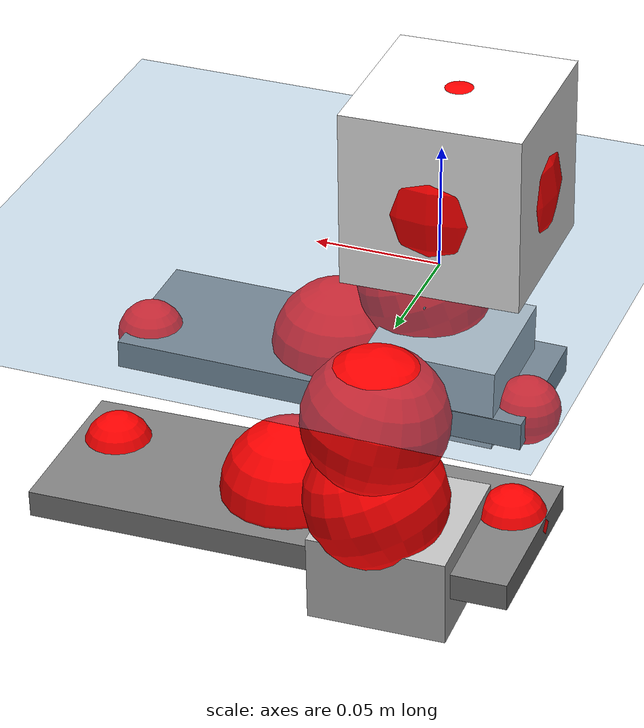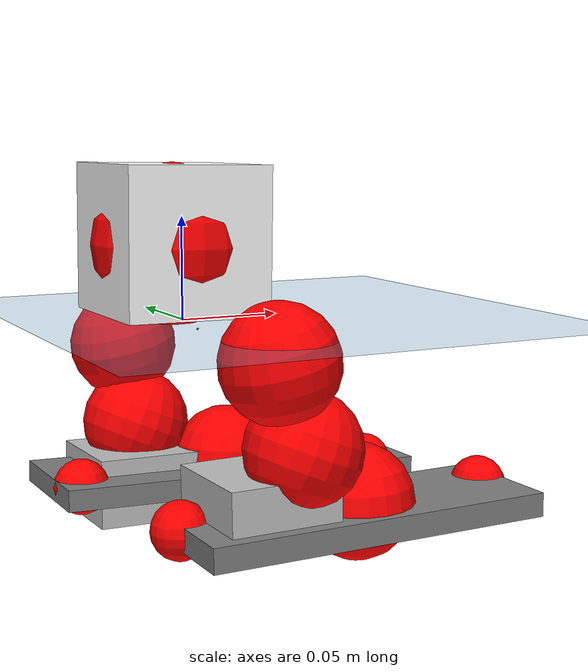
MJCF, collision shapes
<mujoco model="pi_12dof_release_v1">
  <compiler angle="radian" assetdir="assets" balanceinertia="true" inertiafromgeom="false"/>

  <option timestep="0.005" density="1.2" viscosity="2e-05"/>

  <size nkey="1"/>

  <visual>
    <quality shadowsize="8192"/>
    <map shadowclip="0.5"/>
  </visual>

  <default>
    <default class="/">
      <joint armature="0.01" damping="0.01" frictionloss="0.01"/>
      <geom contype="0" conaffinity="0" group="1" solref="-1000 -80"/>
      <site size="0.01 0.005 0.005" group="5"/>
      <general forcelimited="true" biastype="affine" gainprm="20" biasprm="0 -20 -0.5"/>
      <default class="foot">
        <geom size="0.0845 0.036 0.005" type="box" condim="6" group="4" priority="1" friction="0.9 0.2 0.2" solimp="0.015 1 0.005"/>
      </default>
      <default class="reward_collision_sphere">
        <geom group="5" rgba="1 0 0 1"/>
      </default>
    </default>
  </default>

  <asset>
    <texture type="skybox" colorspace="auto" name="//unnamed_texture_0" builtin="gradient" rgb1="0.95 0.95 0.95" rgb2="0.95 0.95 0.95" width="100" height="600"/>
    <texture type="2d" colorspace="auto" name="texplane" builtin="checker" rgb1="0.345 0.575 0.748" rgb2="0.345 0.575 0.748" markrgb="1 1 1" width="512" height="512"/>
    <material name="MatPlane" class="/" texture="texplane" texuniform="true" texrepeat="2 2" specular="0.9"/>
    <mesh name="baselink_1" class="/" file="baselink_1.STL"/>
    <mesh name="r_hip_pitch_link" class="/" file="r_hip_pitch_link.STL"/>
    <mesh name="r_hip_roll_link" class="/" file="r_hip_roll_link.STL"/>
    <mesh name="r_thigh_link" class="/" file="r_thigh_link.STL"/>
    <mesh name="r_calf_link" class="/" file="r_calf_link.STL"/>
    <mesh name="r_ankle_pitch_link" class="/" file="r_ankle_pitch_link.STL"/>
    <mesh name="r_ankle_roll_link" class="/" file="r_ankle_roll_link.STL"/>
    <mesh name="l_hip_pitch_link" class="/" file="l_hip_pitch_link.STL"/>
    <mesh name="l_hip_roll_link" class="/" file="l_hip_roll_link.STL"/>
    <mesh name="l_thigh_link" class="/" file="l_thigh_link.STL"/>
    <mesh name="l_calf_link" class="/" file="l_calf_link.STL"/>
    <mesh name="l_ankle_pitch_link" class="/" file="l_ankle_pitch_link.STL"/>
    <mesh name="l_ankle_roll_link" class="/" file="l_ankle_roll_link.STL"/>
  </asset>

  <worldbody>
    <geom name="floor" class="/" size="100 100 0.125" type="plane" group="0" material="MatPlane"/>
    <light name="toplight_shadow" class="/" pos="0 0 5" dir="0.0990148 0.0990148 -0.990148" type="directional" ambient="0.04 0.04 0.04" diffuse="0.55 0.55 0.55" specular="0.12 0.12 0.12"/>
    <light name="toplight_fill" class="/" pos="0 0 5" dir="0.0990148 0.0990148 -0.990148" type="directional" castshadow="false" ambient="0.04 0.04 0.04" diffuse="0.3 0.3 0.3" specular="0.08 0.08 0.08"/>
    <body name="trunk" pos="-0.0062276 -0.00278805 0.0186425" quat="0.999961 -0.00316544 0.00772556 0.00281468">
      <inertial pos="-0.00244133 -0.0158162 0.0158665" quat="0.6362 -0.0144342 0.034811 0.770603" mass="0.67971" diaginertia="0.0214801 0.000751932 3.9364e-06"/>
      <joint name="//unnamed_joint_0" type="free"/>
      <geom name="//unnamed_geom_1" class="/" type="mesh" density="0" rgba="1 1 1 1" mesh="baselink_1"/>
      <geom name="//unnamed_geom_2" class="/" size="0.0352726 0.0352726 0.0352726" pos="0 0 0.0212446" type="box" rgba="1 1 1 1"/>
      <geom name="//unnamed_geom_3" class="reward_collision_sphere" size="0.0387998" pos="0 0 0.018589"/>
      <site name="imu" class="/" pos="-0.0368113 -0.0634575 0.0760196" size="0.00705452"/>
      <camera name="track" class="/" pos="0 -1.26332 0" quat="0.707107 0.707107 0 0" mode="trackcom"/>
      <camera name="ego_camera" class="/" pos="0.0914354 0 0.0478004" quat="-0.5 -0.5 0.5 0.5"/>
      <body name="r_hip_pitch_link" pos="0.0024259 -0.0243631 -0.0190964" quat="0.992053 -0.00192984 -0.125803 0.000817693">
        <inertial pos="0.0181764 -0.0373014 0.0181112" quat="0.00227403 0.754535 -0.0783999 0.651556" mass="0.153359" diaginertia="0.000276435 1.26676e-05 1.28497e-07"/>
        <joint name="r_hip_pitch_joint" class="/" pos="0 0 0" axis="0.0413335 -0.998722 -0.0290991" range="-1.89559 1.4187" armature="0.00517142" damping="0" frictionloss="0.00462865"/>
        <geom name="//unnamed_geom_4" class="/" type="mesh" density="0" rgba="0.75294 0.75294 0.75294 1" mesh="r_hip_pitch_link"/>
        <geom name="//unnamed_geom_5" class="/" size="0.000352726 0.000352726 0.000352726" type="box" rgba="0.75294 0.75294 0.75294 1"/>
        <body name="r_hip_roll_link" pos="0.0158295 -0.0468434 -0.0150178" quat="0.999999 0.000165763 -0.00114803 0.000791979">
          <inertial pos="-0.00220048 -0.0028269 -0.0113425" quat="0.724823 -0.113445 -0.074669 0.675416" mass="0.14807" diaginertia="0.000982819 3.35021e-05 2.44487e-07"/>
          <joint name="r_hip_roll_joint" class="/" pos="0 0 0" axis="-0.997427 -0.0699892 -0.0155194" stiffness="0.017676" range="-0.151716 0.505976" armature="0.0136052" damping="0.0151324" frictionloss="0.00246931"/>
          <geom name="//unnamed_geom_6" class="/" type="mesh" density="0" rgba="0.75294 0.75294 0.75294 1" mesh="r_hip_roll_link"/>
          <geom name="//unnamed_geom_7" class="/" size="0.000352726 0.000352726 0.000352726" type="box" rgba="0.75294 0.75294 0.75294 1"/>
          <geom name="//unnamed_geom_8" class="reward_collision_sphere" size="0.0282181"/>
          <body name="r_thigh_link" pos="-0.00877155 0.00344492 -0.0162262" quat="1 4.01405e-06 -0.000210254 -7.42302e-05">
            <inertial pos="0.0198039 0.0186959 -0.0142278" quat="0.72809 0.685229 0.0185965 2.83494e-05" mass="0.0400681" diaginertia="0.000431414 9.31327e-06 8.34545e-08"/>
            <joint name="r_thigh_joint" class="/" pos="0 0 0" axis="-0.0031935 -0.0338555 -0.999422" range="-0.0682674 0.274196" armature="0.0128895" damping="0" frictionloss="0.00952191"/>
            <geom name="//unnamed_geom_9" class="/" type="mesh" density="0" rgba="0.75294 0.75294 0.75294 1" mesh="r_thigh_link"/>
            <geom name="//unnamed_geom_10" class="/" size="0.000352726 0.000352726 0.000352726" type="box" rgba="0.75294 0.75294 0.75294 1"/>
            <body name="r_calf_link" pos="0.0123884 0.00071356 -0.0271186" quat="0.950216 0.000774172 0.311554 -0.00484612">
              <inertial pos="0.00998453 -0.000839208 -0.0173401" quat="0.995633 0.0335966 0.0868412 0.00674072" mass="0.24336" diaginertia="0.00962995 0.000410786 2.3615e-07"/>
              <joint name="r_calf_joint" class="/" pos="0 0 0" axis="-0.0261011 -0.999079 0.0340594" stiffness="0.0452247" range="-1.58699 0.407788" armature="0.00705873" damping="0" frictionloss="0.00510931"/>
              <geom name="//unnamed_geom_11" class="/" type="mesh" density="0" rgba="0.75294 0.75294 0.75294 1" mesh="r_calf_link"/>
              <geom name="//unnamed_geom_12" class="/" size="0.000352726 0.000352726 0.000352726" type="box" rgba="0.75294 0.75294 0.75294 1"/>
              <geom name="//unnamed_geom_13" class="reward_collision_sphere" size="0.0282181"/>
              <body name="r_ankle_pitch_link" pos="-0.00348415 0.0127248 -0.0321178" quat="0.979409 -0.00259056 -0.201836 0.00363692">
                <inertial pos="0.0171362 -0.00121749 0.00937934" quat="0.0164544 0.712056 0.0384754 0.700875" mass="0.0512543" diaginertia="0.000800777 2.72365e-05 1.39619e-07"/>
                <joint name="r_ankle_pitch_joint" class="/" pos="0 0 0" axis="-0.0662528 -0.997784 0.00617752" range="-1.05349 0.491077" armature="0.0104875" damping="0" frictionloss="0.00465877"/>
                <geom name="//unnamed_geom_14" class="/" type="mesh" density="0" rgba="0.75294 0.75294 0.75294 1" mesh="r_ankle_pitch_link"/>
                <geom name="//unnamed_geom_15" class="/" size="0.0275126 0.0282181 0.0176363" type="box" rgba="0.75294 0.75294 0.75294 1"/>
                <body name="r_ankle_roll_link" pos="0.110103 -0.00351835 0.00210446" quat="0.999993 0.00335889 0.00147236 -0.00107895">
                  <inertial pos="-0.0206146 0.017404 -0.019244" quat="0.524007 0.486299 0.481685 0.506863" mass="0.240626" diaginertia="0.00393943 0.000100005 5.31251e-07"/>
                  <joint name="r_ankle_roll_joint" class="/" pos="0 0 0" axis="-0.999782 0.0173384 0.0116468" range="0.240956 -0.103645" armature="0.0127408" damping="0.0588712" frictionloss="0.0133187"/>
                  <geom name="//unnamed_geom_16" class="/" type="mesh" density="0" rgba="0.75294 0.75294 0.75294 1" mesh="r_ankle_roll_link"/>
                  <geom name="//unnamed_geom_17" class="/" type="mesh" rgba="0.75294 0.75294 0.75294 1" mesh="r_ankle_roll_link"/>
                  <geom name="right_foot" class="foot" size="0.0875385 0.0317919 0.00595267" pos="-0.0621761 0 -0.0116845"/>
                  <geom name="//unnamed_geom_19" class="reward_collision_sphere" size="0.0282181" pos="-0.0609569 0 -0.00531115"/>
                  <geom name="//unnamed_geom_20" class="reward_collision_sphere" size="0.014109" pos="0.0182871 0.0126332 -0.0106223"/>
                  <geom name="//unnamed_geom_21" class="reward_collision_sphere" size="0.014109" pos="-0.146297 0.0126332 -0.0106223"/>
                  <site name="right_foot" class="foot" pos="-0.0621761 0 -0.0116845" size="0.00705452"/>
                </body>
              </body>
            </body>
          </body>
        </body>
      </body>
      <body name="l_hip_pitch_link" pos="0.0036936 0.0286493 -0.0229445" quat="0.992435 0.00335202 -0.122704 -0.002452">
        <inertial pos="0.0102123 0.0514713 0.0186484" quat="-0.0378807 0.668691 0.0224006 0.742237" mass="0.170074" diaginertia="0.000457696 1.06436e-05 1.83017e-07"/>
        <joint name="l_hip_pitch_joint" class="/" pos="0 0 0" axis="0.0258004 0.996636 0.0777923" stiffness="0.07259" range="-0.879585 1.99073" armature="0.00689058" damping="0.0815094" frictionloss="0.00281483"/>
        <geom name="//unnamed_geom_22" class="/" type="mesh" density="0" rgba="0.75294 0.75294 0.75294 1" mesh="l_hip_pitch_link"/>
        <geom name="//unnamed_geom_23" class="/" size="0.000352726 0.000352726 0.000352726" type="box" rgba="0.75294 0.75294 0.75294 1"/>
        <body name="l_hip_roll_link" pos="-0.00373959 0.0522766 -0.0182773" quat="0.999974 -0.00610916 0.000429082 0.00390328">
          <inertial pos="-0.021944 0.0147136 0.00309675" quat="0.698369 -0.0740355 -0.0799114 0.707399" mass="0.108399" diaginertia="0.000525453 1.9255e-05 1.05221e-07"/>
          <joint name="l_hip_roll_joint" class="/" pos="0 0 0" axis="-0.999925 -0.0120438 0.00239596" stiffness="0.0128826" range="-0.514992 0.370827" armature="0.0114326" damping="0" frictionloss="0.0072285"/>
          <geom name="//unnamed_geom_24" class="/" type="mesh" density="0" rgba="0.75294 0.75294 0.75294 1" mesh="l_hip_roll_link"/>
          <geom name="//unnamed_geom_25" class="/" size="0.000352726 0.000352726 0.000352726" type="box" rgba="0.75294 0.75294 0.75294 1"/>
          <geom name="//unnamed_geom_26" class="reward_collision_sphere" size="0.0282181"/>
          <body name="l_thigh_link" pos="0.0129083 -0.00338464 -0.00519771" quat="0.999971 -0.00515814 0.00037495 0.00560446">
            <inertial pos="0.0182884 -0.014781 0.0062755" quat="0.659655 0.74688 -0.0221867 -0.0808217" mass="0.043928" diaginertia="0.000386862 1.28824e-05 7.80161e-08"/>
            <joint name="l_thigh_joint" class="/" pos="0 0 0" axis="0.010216 0.0118775 -0.999877" range="-0.517721 0.424097" armature="0.010766" damping="0.0453043" frictionloss="0.000330277"/>
            <geom name="//unnamed_geom_27" class="/" type="mesh" density="0" rgba="0.75294 0.75294 0.75294 1" mesh="l_thigh_link"/>
            <geom name="//unnamed_geom_28" class="/" size="0.000352726 0.000352726 0.000352726" type="box" rgba="0.75294 0.75294 0.75294 1"/>
            <body name="l_calf_link" pos="-0.0196018 -0.00539815 -0.0355102" quat="0.94768 0.000101292 0.319221 0.000163992">
              <inertial pos="0.015922 0.0153365 -0.0193131" quat="0.995935 0.0894771 -0.00655928 0.00795858" mass="0.273522" diaginertia="0.00564294 0.000256963 1.50118e-07"/>
              <joint name="l_calf_joint" class="/" pos="0 0 0" axis="0.0608671 0.998129 -0.00572624" stiffness="0.0797648" range="-0.319047 1.30222" armature="0.00451509" damping="0.0754604" frictionloss="0.00229989"/>
              <geom name="//unnamed_geom_29" class="/" type="mesh" density="0" rgba="0.75294 0.75294 0.75294 1" mesh="l_calf_link"/>
              <geom name="//unnamed_geom_30" class="/" size="0.000352726 0.000352726 0.000352726" type="box" rgba="0.75294 0.75294 0.75294 1"/>
              <geom name="//unnamed_geom_31" class="reward_collision_sphere" size="0.0282181"/>
              <body name="l_ankle_pitch_link" pos="0.00610458 -0.00904604 -0.029072" quat="0.97977 0.0026492 -0.200106 -0.000726272">
                <inertial pos="-0.00500034 0.0115844 0.0169412" quat="-0.00538917 0.657381 0.00694992 0.753507" mass="0.0854088" diaginertia="0.000734712 2.58626e-05 1.58638e-07"/>
                <joint name="l_ankle_pitch_joint" class="/" pos="0 0 0" axis="-0.00451041 0.999986 -0.00259659" range="-0.232009 1.20545" armature="0.0114784" damping="0.0995448" frictionloss="0.0124657"/>
                <geom name="//unnamed_geom_32" class="/" type="mesh" density="0" rgba="0.75294 0.75294 0.75294 1" mesh="l_ankle_pitch_link"/>
                <geom name="//unnamed_geom_33" class="/" size="0.0275126 0.0282181 0.0176363" type="box" rgba="0.75294 0.75294 0.75294 1"/>
                <body name="l_ankle_roll_link" pos="0.109492 -0.0149273 0.0145911" quat="0.999951 0.00202168 0.00446099 -0.00860154">
                  <inertial pos="-0.0384152 0.00167901 -0.00613115" quat="0.502716 0.401652 0.476371 0.599185" mass="0.166721" diaginertia="0.00277317 7.38346e-05 3.82727e-07"/>
                  <joint name="l_ankle_roll_joint" class="/" pos="0 0 0" axis="-0.999989 0.00330739 -0.00332091" stiffness="0.0392309" range="-0.289564 0.545221" armature="0.00884541" damping="0.0738699" frictionloss="0.0111334"/>
                  <geom name="//unnamed_geom_34" class="/" type="mesh" density="0" rgba="0.75294 0.75294 0.75294 1" mesh="l_ankle_roll_link"/>
                  <geom name="//unnamed_geom_35" class="/" type="mesh" rgba="0.75294 0.75294 0.75294 1" mesh="l_ankle_roll_link"/>
                  <geom name="left_foot" class="foot" size="0.0976764 0.0348531 0.00543569" pos="-0.0621761 0 -0.0116845"/>
                  <geom name="//unnamed_geom_37" class="reward_collision_sphere" size="0.0282181" pos="-0.0609569 0 -0.00531115"/>
                  <geom name="//unnamed_geom_38" class="reward_collision_sphere" size="0.014109" pos="0.0182871 -0.0126332 -0.0106223"/>
                  <geom name="//unnamed_geom_39" class="reward_collision_sphere" size="0.014109" pos="-0.146297 -0.0126332 -0.0106223"/>
                  <site name="left_foot" class="foot" pos="-0.0621761 0 -0.0116845" size="0.00705452"/>
                </body>
              </body>
            </body>
          </body>
        </body>
      </body>
    </body>
  </worldbody>

  <contact>
    <pair class="/" geom1="floor" geom2="right_foot" name="//unnamed_contact_1"/>
    <pair class="/" geom1="floor" geom2="left_foot" name="//unnamed_contact_0"/>
  </contact>

  <actuator>
    <general name="r_hip_pitch_joint" class="/" joint="r_hip_pitch_joint" forcerange="-5.67993 5.67993" gainprm="21.051" biasprm="0 -21.051 -0.502192"/>
    <general name="r_hip_roll_joint" class="/" joint="r_hip_roll_joint" forcerange="-25.5241 25.5241" gainprm="21.051" biasprm="0 -21.051 -0.502192"/>
    <general name="r_thigh_joint" class="/" joint="r_thigh_joint" forcerange="-16.401 16.401" gainprm="21.051" biasprm="0 -21.051 -0.502192"/>
    <general name="r_calf_joint" class="/" joint="r_calf_joint" forcerange="-3.84604 3.84604" gainprm="21.051" biasprm="0 -21.051 -0.502192"/>
    <general name="r_ankle_pitch_joint" class="/" joint="r_ankle_pitch_joint" forcerange="-20.8732 20.8732" gainprm="21.051" biasprm="0 -21.051 -0.502192"/>
    <general name="r_ankle_roll_joint" class="/" joint="r_ankle_roll_joint" forcerange="-25.4424 25.4424" gainprm="21.051" biasprm="0 -21.051 -0.502192"/>
    <general name="l_hip_pitch_joint" class="/" joint="l_hip_pitch_joint" forcerange="-16.8116 16.8116" gainprm="21.051" biasprm="0 -21.051 -0.502192"/>
    <general name="l_hip_roll_joint" class="/" joint="l_hip_roll_joint" forcerange="-10.8075 10.8075" gainprm="21.051" biasprm="0 -21.051 -0.502192"/>
    <general name="l_thigh_joint" class="/" joint="l_thigh_joint" forcerange="-7.87037 7.87037" gainprm="21.051" biasprm="0 -21.051 -0.502192"/>
    <general name="l_calf_joint" class="/" joint="l_calf_joint" forcerange="-18.6483 18.6483" gainprm="21.051" biasprm="0 -21.051 -0.502192"/>
    <general name="l_ankle_pitch_joint" class="/" joint="l_ankle_pitch_joint" forcerange="-8.03924 8.03924" gainprm="21.051" biasprm="0 -21.051 -0.502192"/>
    <general name="l_ankle_roll_joint" class="/" joint="l_ankle_roll_joint" forcerange="-16.5408 16.5408" gainprm="21.051" biasprm="0 -21.051 -0.502192"/>
  </actuator>

  <sensor>
    <gyro site="imu" name="imu_angular_velocity"/>
    <velocimeter site="imu" name="imu_linear_velocity"/>
    <framelinvel objtype="site" objname="left_foot" name="left_foot_global_linear_velocity"/>
    <framelinvel objtype="site" objname="right_foot" name="right_foot_global_linear_velocity"/>
  </sensor>

  <keyframe>
    <key name="home" qpos="0 0 0.291 1 0 0 0 0.4 0 0 -0.8 0.4 0 -0.4 0 0 0.8 -0.4 0"/>
  </keyframe>
</mujoco>
